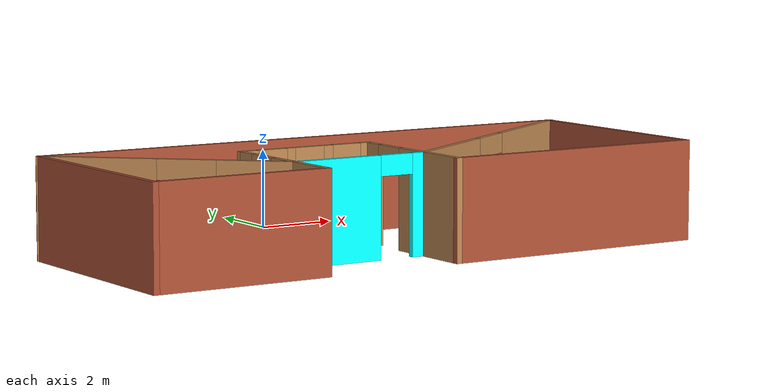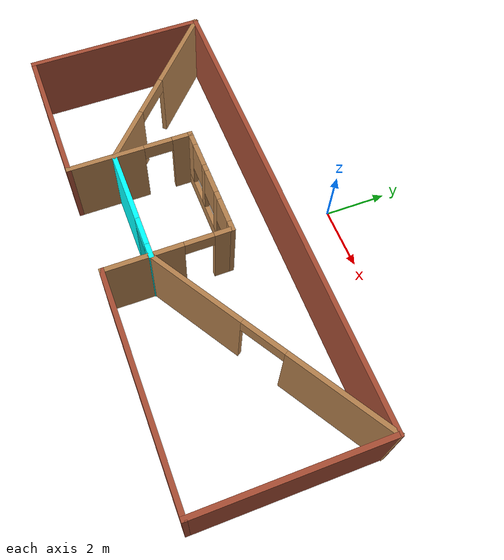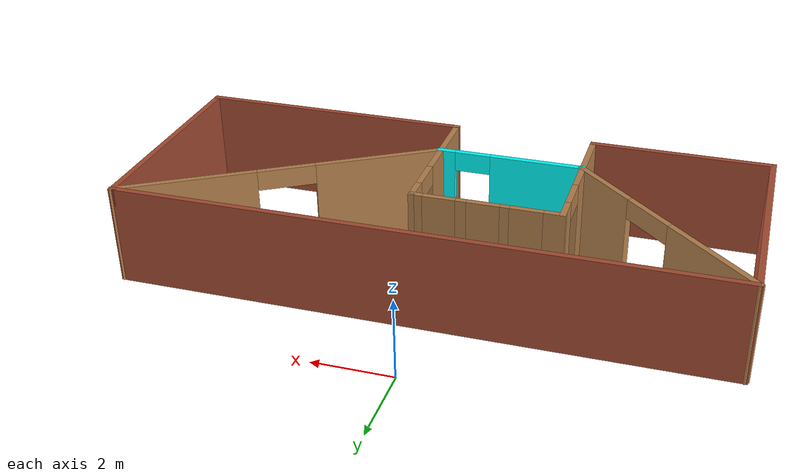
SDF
<?xml version='1.0'?>
<sdf version='1.6'>
  <model name='Building'>
    <pose frame=''>0.19208 -4.74252 0 0 -0 0</pose>
    <link name='Wall_0'>
      <collision name='Wall_0_Collision'>
        <geometry>
          <box>
            <size>15 0.15 2.5</size>
          </box>
        </geometry>
        <pose frame=''>0 0 1.25 0 -0 0</pose>
      </collision>
      <visual name='Wall_0_Visual'>
        <pose frame=''>0 0 1.25 0 -0 0</pose>
        <geometry>
          <box>
            <size>15 0.15 2.5</size>
          </box>
        </geometry>
        <material>
          <script>
            <uri>file://media/materials/scripts/gazebo.material</uri>
            <name>Gazebo/Bricks</name>
          </script>
          <ambient>1 1 1 1</ambient>
        </material>
        <meta>
          <layer>0</layer>
        </meta>
      </visual>
      <pose frame=''>0.02635 2.78458 0 0 -0 0</pose>
    </link>
    <link name='Wall_1'>
      <collision name='Wall_1_Collision'>
        <geometry>
          <box>
            <size>5.75 0.15 2.5</size>
          </box>
        </geometry>
        <pose frame=''>0 0 1.25 0 -0 0</pose>
      </collision>
      <visual name='Wall_1_Visual'>
        <pose frame=''>0 0 1.25 0 -0 0</pose>
        <geometry>
          <box>
            <size>5.75 0.15 2.5</size>
          </box>
        </geometry>
        <material>
          <script>
            <uri>file://media/materials/scripts/gazebo.material</uri>
            <name>Gazebo/Bricks</name>
          </script>
          <ambient>1 1 1 1</ambient>
        </material>
        <meta>
          <layer>0</layer>
        </meta>
      </visual>
      <pose frame=''>7.45135 -0.015421 0 0 0 -1.5708</pose>
    </link>
    <link name='Wall_11'>
      <pose frame=''>-1.17908 -1.39948 0 0 -0 0</pose>
      <visual name='Wall_11_Visual_0'>
        <pose frame=''>-0.68472 0 1.25 0 -0 0</pose>
        <geometry>
          <box>
            <size>2.38056 0.15 2.5</size>
          </box>
        </geometry>
        <material>
          <script>
            <uri>file://media/materials/scripts/gazebo.material</uri>
            <name>Gazebo/Grey</name>
          </script>
          <ambient>0 1 1 1</ambient>
        </material>
        <meta>
          <layer>0</layer>
        </meta>
      </visual>
      <collision name='Wall_11_Collision_0'>
        <geometry>
          <box>
            <size>2.38056 0.15 2.5</size>
          </box>
        </geometry>
        <pose frame=''>-0.68472 0 1.25 0 -0 0</pose>
      </collision>
      <visual name='Wall_11_Visual_1'>
        <pose frame=''>1.64028 0 1.25 0 -0 0</pose>
        <geometry>
          <box>
            <size>0.469441 0.15 2.5</size>
          </box>
        </geometry>
        <material>
          <script>
            <uri>file://media/materials/scripts/gazebo.material</uri>
            <name>Gazebo/Grey</name>
          </script>
          <ambient>0 1 1 1</ambient>
        </material>
        <meta>
          <layer>0</layer>
        </meta>
      </visual>
      <collision name='Wall_11_Collision_1'>
        <geometry>
          <box>
            <size>0.469441 0.15 2.5</size>
          </box>
        </geometry>
        <pose frame=''>1.64028 0 1.25 0 -0 0</pose>
      </collision>
      <visual name='Wall_11_Visual_2'>
        <pose frame=''>0.955559 0 2.25 0 -0 0</pose>
        <geometry>
          <box>
            <size>0.9 0.15 0.5</size>
          </box>
        </geometry>
        <material>
          <script>
            <uri>file://media/materials/scripts/gazebo.material</uri>
            <name>Gazebo/Grey</name>
          </script>
          <ambient>0 1 1 1</ambient>
        </material>
        <meta>
          <layer>0</layer>
        </meta>
      </visual>
      <collision name='Wall_11_Collision_2'>
        <geometry>
          <box>
            <size>0.9 0.15 0.5</size>
          </box>
        </geometry>
        <pose frame=''>0.955559 0 2.25 0 -0 0</pose>
      </collision>
    </link>
    <link name='Wall_12'>
      <pose frame=''>4.03613 0.692551 0 0 -0 0.549604</pose>
      <visual name='Wall_12_Visual_0'>
        <pose frame=''>-2.45436 0 1.25 0 -0 0</pose>
        <geometry>
          <box>
            <size>3.25134 0.15 2.5</size>
          </box>
        </geometry>
        <material>
          <script>
            <uri>file://media/materials/scripts/gazebo.material</uri>
            <name>Gazebo/Wood</name>
          </script>
          <ambient>1 1 1 1</ambient>
        </material>
        <meta>
          <layer>0</layer>
        </meta>
      </visual>
      <collision name='Wall_12_Collision_0'>
        <geometry>
          <box>
            <size>3.25134 0.15 2.5</size>
          </box>
        </geometry>
        <pose frame=''>-2.45436 0 1.25 0 -0 0</pose>
      </collision>
      <visual name='Wall_12_Visual_1'>
        <pose frame=''>2.34267 0 1.25 0 -0 0</pose>
        <geometry>
          <box>
            <size>3.47472 0.15 2.5</size>
          </box>
        </geometry>
        <material>
          <script>
            <uri>file://media/materials/scripts/gazebo.material</uri>
            <name>Gazebo/Wood</name>
          </script>
          <ambient>1 1 1 1</ambient>
        </material>
        <meta>
          <layer>0</layer>
        </meta>
      </visual>
      <collision name='Wall_12_Collision_1'>
        <geometry>
          <box>
            <size>3.47472 0.15 2.5</size>
          </box>
        </geometry>
        <pose frame=''>2.34267 0 1.25 0 -0 0</pose>
      </collision>
      <visual name='Wall_12_Visual_2'>
        <pose frame=''>-0.111688 0 2.25 0 -0 0</pose>
        <geometry>
          <box>
            <size>1.434 0.15 0.5</size>
          </box>
        </geometry>
        <material>
          <script>
            <uri>file://media/materials/scripts/gazebo.material</uri>
            <name>Gazebo/Wood</name>
          </script>
          <ambient>1 1 1 1</ambient>
        </material>
        <meta>
          <layer>0</layer>
        </meta>
      </visual>
      <collision name='Wall_12_Collision_2'>
        <geometry>
          <box>
            <size>1.434 0.15 0.5</size>
          </box>
        </geometry>
        <pose frame=''>-0.111688 0 2.25 0 -0 0</pose>
      </collision>
    </link>
    <link name='Wall_14'>
      <pose frame=''>-5.21387 0.692551 0 0 0 -0.752416</pose>
      <visual name='Wall_14_Visual_0'>
        <pose frame=''>-1.68122 0 1.25 0 -0 0</pose>
        <geometry>
          <box>
            <size>2.90944 0.15 2.5</size>
          </box>
        </geometry>
        <material>
          <script>
            <uri>file://media/materials/scripts/gazebo.material</uri>
            <name>Gazebo/Wood</name>
          </script>
          <ambient>1 1 1 1</ambient>
        </material>
        <meta>
          <layer>0</layer>
        </meta>
      </visual>
      <collision name='Wall_14_Collision_0'>
        <geometry>
          <box>
            <size>2.90944 0.15 2.5</size>
          </box>
        </geometry>
        <pose frame=''>-1.68122 0 1.25 0 -0 0</pose>
      </collision>
      <visual name='Wall_14_Visual_1'>
        <pose frame=''>2.1684 0 1.25 0 -0 0</pose>
        <geometry>
          <box>
            <size>1.93508 0.15 2.5</size>
          </box>
        </geometry>
        <material>
          <script>
            <uri>file://media/materials/scripts/gazebo.material</uri>
            <name>Gazebo/Wood</name>
          </script>
          <ambient>1 1 1 1</ambient>
        </material>
        <meta>
          <layer>0</layer>
        </meta>
      </visual>
      <collision name='Wall_14_Collision_1'>
        <geometry>
          <box>
            <size>1.93508 0.15 2.5</size>
          </box>
        </geometry>
        <pose frame=''>2.1684 0 1.25 0 -0 0</pose>
      </collision>
      <visual name='Wall_14_Visual_2'>
        <pose frame=''>0.48718 0 2.25 0 -0 0</pose>
        <geometry>
          <box>
            <size>1.42735 0.15 0.5</size>
          </box>
        </geometry>
        <material>
          <script>
            <uri>file://media/materials/scripts/gazebo.material</uri>
            <name>Gazebo/Wood</name>
          </script>
          <ambient>1 1 1 1</ambient>
        </material>
        <meta>
          <layer>0</layer>
        </meta>
      </visual>
      <collision name='Wall_14_Collision_2'>
        <geometry>
          <box>
            <size>1.42735 0.15 0.5</size>
          </box>
        </geometry>
        <pose frame=''>0.48718 0 2.25 0 -0 0</pose>
      </collision>
    </link>
    <link name='Wall_2'>
      <collision name='Wall_2_Collision'>
        <geometry>
          <box>
            <size>7 0.15 2.5</size>
          </box>
        </geometry>
        <pose frame=''>0 0 1.25 0 -0 0</pose>
      </collision>
      <visual name='Wall_2_Visual'>
        <pose frame=''>0 0 1.25 0 -0 0</pose>
        <geometry>
          <box>
            <size>7 0.15 2.5</size>
          </box>
        </geometry>
        <material>
          <script>
            <uri>file://media/materials/scripts/gazebo.material</uri>
            <name>Gazebo/Bricks</name>
          </script>
          <ambient>1 1 1 1</ambient>
        </material>
        <meta>
          <layer>0</layer>
        </meta>
      </visual>
      <pose frame=''>4.02635 -2.81542 0 0 -0 3.14159</pose>
    </link>
    <link name='Wall_3'>
      <pose frame=''>0.60135 -0.890421 0 0 -0 1.5708</pose>
      <visual name='Wall_3_Visual_0'>
        <pose frame=''>-0.76528 0 1.25 0 -0 0</pose>
        <geometry>
          <box>
            <size>2.46944 0.15 2.5</size>
          </box>
        </geometry>
        <material>
          <script>
            <uri>file://media/materials/scripts/gazebo.material</uri>
            <name>Gazebo/Wood</name>
          </script>
          <ambient>1 1 0 1</ambient>
        </material>
        <meta>
          <layer>0</layer>
        </meta>
      </visual>
      <collision name='Wall_3_Collision_0'>
        <geometry>
          <box>
            <size>2.46944 0.15 2.5</size>
          </box>
        </geometry>
        <pose frame=''>-0.76528 0 1.25 0 -0 0</pose>
      </collision>
      <visual name='Wall_3_Visual_1'>
        <pose frame=''>1.68472 0 1.25 0 -0 0</pose>
        <geometry>
          <box>
            <size>0.630559 0.15 2.5</size>
          </box>
        </geometry>
        <material>
          <script>
            <uri>file://media/materials/scripts/gazebo.material</uri>
            <name>Gazebo/Wood</name>
          </script>
          <ambient>1 1 0 1</ambient>
        </material>
        <meta>
          <layer>0</layer>
        </meta>
      </visual>
      <collision name='Wall_3_Collision_1'>
        <geometry>
          <box>
            <size>0.630559 0.15 2.5</size>
          </box>
        </geometry>
        <pose frame=''>1.68472 0 1.25 0 -0 0</pose>
      </collision>
      <visual name='Wall_3_Visual_2'>
        <pose frame=''>0.919441 0 2.25 0 -0 0</pose>
        <geometry>
          <box>
            <size>0.9 0.15 0.5</size>
          </box>
        </geometry>
        <material>
          <script>
            <uri>file://media/materials/scripts/gazebo.material</uri>
            <name>Gazebo/Wood</name>
          </script>
          <ambient>1 1 0 1</ambient>
        </material>
        <meta>
          <layer>0</layer>
        </meta>
      </visual>
      <collision name='Wall_3_Collision_2'>
        <geometry>
          <box>
            <size>0.9 0.15 0.5</size>
          </box>
        </geometry>
        <pose frame=''>0.919441 0 2.25 0 -0 0</pose>
      </collision>
    </link>
    <link name='Wall_4'>
      <pose frame=''>-1.19865 1.03458 0 0 -0 3.14159</pose>
      <visual name='Wall_4_Visual_0'>
        <pose frame=''>-1.70539 0 1.25 0 -0 0</pose>
        <geometry>
          <box>
            <size>0.339225 0.15 2.5</size>
          </box>
        </geometry>
        <material>
          <script>
            <uri>file://media/materials/scripts/gazebo.material</uri>
            <name>Gazebo/Wood</name>
          </script>
          <ambient>1 1 0 1</ambient>
        </material>
        <meta>
          <layer>0</layer>
        </meta>
      </visual>
      <collision name='Wall_4_Collision_0'>
        <geometry>
          <box>
            <size>0.339225 0.15 2.5</size>
          </box>
        </geometry>
        <pose frame=''>-1.70539 0 1.25 0 -0 0</pose>
      </collision>
      <visual name='Wall_4_Visual_1'>
        <pose frame=''>0.169612 0 0.25 0 -0 0</pose>
        <geometry>
          <box>
            <size>3.41078 0.15 0.5</size>
          </box>
        </geometry>
        <material>
          <script>
            <uri>file://media/materials/scripts/gazebo.material</uri>
            <name>Gazebo/Wood</name>
          </script>
          <ambient>1 1 0 1</ambient>
        </material>
        <meta>
          <layer>0</layer>
        </meta>
      </visual>
      <collision name='Wall_4_Collision_1'>
        <geometry>
          <box>
            <size>3.41078 0.15 0.5</size>
          </box>
        </geometry>
        <pose frame=''>0.169612 0 0.25 0 -0 0</pose>
      </collision>
      <visual name='Wall_4_Visual_2'>
        <pose frame=''>-0.602765 0 1.5 0 -0 0</pose>
        <geometry>
          <box>
            <size>0.266019 0.15 2</size>
          </box>
        </geometry>
        <material>
          <script>
            <uri>file://media/materials/scripts/gazebo.material</uri>
            <name>Gazebo/Wood</name>
          </script>
          <ambient>1 1 0 1</ambient>
        </material>
        <meta>
          <layer>0</layer>
        </meta>
      </visual>
      <collision name='Wall_4_Collision_2'>
        <geometry>
          <box>
            <size>0.266019 0.15 2</size>
          </box>
        </geometry>
        <pose frame=''>-0.602765 0 1.5 0 -0 0</pose>
      </collision>
      <visual name='Wall_4_Visual_3'>
        <pose frame=''>0.44314 0 1.5 0 -0 0</pose>
        <geometry>
          <box>
            <size>0.225792 0.15 2</size>
          </box>
        </geometry>
        <material>
          <script>
            <uri>file://media/materials/scripts/gazebo.material</uri>
            <name>Gazebo/Wood</name>
          </script>
          <ambient>1 1 0 1</ambient>
        </material>
        <meta>
          <layer>0</layer>
        </meta>
      </visual>
      <collision name='Wall_4_Collision_3'>
        <geometry>
          <box>
            <size>0.225792 0.15 2</size>
          </box>
        </geometry>
        <pose frame=''>0.44314 0 1.5 0 -0 0</pose>
      </collision>
      <visual name='Wall_4_Visual_4'>
        <pose frame=''>1.61552 0 1.5 0 -0 0</pose>
        <geometry>
          <box>
            <size>0.518964 0.15 2</size>
          </box>
        </geometry>
        <material>
          <script>
            <uri>file://media/materials/scripts/gazebo.material</uri>
            <name>Gazebo/Wood</name>
          </script>
          <ambient>1 1 0 1</ambient>
        </material>
        <meta>
          <layer>0</layer>
        </meta>
      </visual>
      <collision name='Wall_4_Collision_4'>
        <geometry>
          <box>
            <size>0.518964 0.15 2</size>
          </box>
        </geometry>
        <pose frame=''>1.61552 0 1.5 0 -0 0</pose>
      </collision>
      <visual name='Wall_4_Visual_5'>
        <pose frame=''>-1.13577 0 1.9 0 -0 0</pose>
        <geometry>
          <box>
            <size>0.8 0.15 1.2</size>
          </box>
        </geometry>
        <material>
          <script>
            <uri>file://media/materials/scripts/gazebo.material</uri>
            <name>Gazebo/Wood</name>
          </script>
          <ambient>1 1 0 1</ambient>
        </material>
        <meta>
          <layer>0</layer>
        </meta>
      </visual>
      <collision name='Wall_4_Collision_5'>
        <geometry>
          <box>
            <size>0.8 0.15 1.2</size>
          </box>
        </geometry>
        <pose frame=''>-1.13577 0 1.9 0 -0 0</pose>
      </collision>
      <visual name='Wall_4_Visual_6'>
        <pose frame=''>-0.069756 0 1.9 0 -0 0</pose>
        <geometry>
          <box>
            <size>0.8 0.15 1.2</size>
          </box>
        </geometry>
        <material>
          <script>
            <uri>file://media/materials/scripts/gazebo.material</uri>
            <name>Gazebo/Wood</name>
          </script>
          <ambient>1 1 0 1</ambient>
        </material>
        <meta>
          <layer>0</layer>
        </meta>
      </visual>
      <collision name='Wall_4_Collision_6'>
        <geometry>
          <box>
            <size>0.8 0.15 1.2</size>
          </box>
        </geometry>
        <pose frame=''>-0.069756 0 1.9 0 -0 0</pose>
      </collision>
      <visual name='Wall_4_Visual_7'>
        <pose frame=''>0.956036 0 1.9 0 -0 0</pose>
        <geometry>
          <box>
            <size>0.8 0.15 1.2</size>
          </box>
        </geometry>
        <material>
          <script>
            <uri>file://media/materials/scripts/gazebo.material</uri>
            <name>Gazebo/Wood</name>
          </script>
          <ambient>1 1 0 1</ambient>
        </material>
        <meta>
          <layer>0</layer>
        </meta>
      </visual>
      <collision name='Wall_4_Collision_7'>
        <geometry>
          <box>
            <size>0.8 0.15 1.2</size>
          </box>
        </geometry>
        <pose frame=''>0.956036 0 1.9 0 -0 0</pose>
      </collision>
    </link>
    <link name='Wall_5'>
      <pose frame=''>-2.99865 -0.890421 0 0 0 -1.5708</pose>
      <visual name='Wall_5_Visual_0'>
        <pose frame=''>-1.66461 0 1.25 0 -0 0</pose>
        <geometry>
          <box>
            <size>0.670786 0.15 2.5</size>
          </box>
        </geometry>
        <material>
          <script>
            <uri>file://media/materials/scripts/gazebo.material</uri>
            <name>Gazebo/Wood</name>
          </script>
          <ambient>1 1 0 1</ambient>
        </material>
        <meta>
          <layer>0</layer>
        </meta>
      </visual>
      <collision name='Wall_5_Collision_0'>
        <geometry>
          <box>
            <size>0.670786 0.15 2.5</size>
          </box>
        </geometry>
        <pose frame=''>-1.66461 0 1.25 0 -0 0</pose>
      </collision>
      <visual name='Wall_5_Visual_1'>
        <pose frame=''>0.785393 0 1.25 0 -0 0</pose>
        <geometry>
          <box>
            <size>2.42921 0.15 2.5</size>
          </box>
        </geometry>
        <material>
          <script>
            <uri>file://media/materials/scripts/gazebo.material</uri>
            <name>Gazebo/Wood</name>
          </script>
          <ambient>1 1 0 1</ambient>
        </material>
        <meta>
          <layer>0</layer>
        </meta>
      </visual>
      <collision name='Wall_5_Collision_1'>
        <geometry>
          <box>
            <size>2.42921 0.15 2.5</size>
          </box>
        </geometry>
        <pose frame=''>0.785393 0 1.25 0 -0 0</pose>
      </collision>
      <visual name='Wall_5_Visual_2'>
        <pose frame=''>-0.879214 0 2.25 0 -0 0</pose>
        <geometry>
          <box>
            <size>0.9 0.15 0.5</size>
          </box>
        </geometry>
        <material>
          <script>
            <uri>file://media/materials/scripts/gazebo.material</uri>
            <name>Gazebo/Wood</name>
          </script>
          <ambient>1 1 0 1</ambient>
        </material>
        <meta>
          <layer>0</layer>
        </meta>
      </visual>
      <collision name='Wall_5_Collision_2'>
        <geometry>
          <box>
            <size>0.9 0.15 0.5</size>
          </box>
        </geometry>
        <pose frame=''>-0.879214 0 2.25 0 -0 0</pose>
      </collision>
    </link>
    <link name='Wall_6'>
      <collision name='Wall_6_Collision'>
        <geometry>
          <box>
            <size>4.5 0.15 2.5</size>
          </box>
        </geometry>
        <pose frame=''>0 0 1.25 0 -0 0</pose>
      </collision>
      <visual name='Wall_6_Visual'>
        <pose frame=''>0 0 1.25 0 -0 0</pose>
        <geometry>
          <box>
            <size>4.5 0.15 2.5</size>
          </box>
        </geometry>
        <material>
          <script>
            <uri>file://media/materials/scripts/gazebo.material</uri>
            <name>Gazebo/Bricks</name>
          </script>
          <ambient>1 1 1 1</ambient>
        </material>
        <meta>
          <layer>0</layer>
        </meta>
      </visual>
      <pose frame=''>-5.17365 -2.81542 0 0 -0 3.14159</pose>
    </link>
    <link name='Wall_8'>
      <collision name='Wall_8_Collision'>
        <geometry>
          <box>
            <size>5.75 0.15 2.5</size>
          </box>
        </geometry>
        <pose frame=''>0 0 1.25 0 -0 0</pose>
      </collision>
      <visual name='Wall_8_Visual'>
        <pose frame=''>0 0 1.25 0 -0 0</pose>
        <geometry>
          <box>
            <size>5.75 0.15 2.5</size>
          </box>
        </geometry>
        <material>
          <script>
            <uri>file://media/materials/scripts/gazebo.material</uri>
            <name>Gazebo/Bricks</name>
          </script>
          <ambient>1 1 1 1</ambient>
        </material>
        <meta>
          <layer>0</layer>
        </meta>
      </visual>
      <pose frame=''>-7.44865 -0.015421 0 0 -0 1.5708</pose>
    </link>
    <static>1</static>
  </model>
</sdf>
